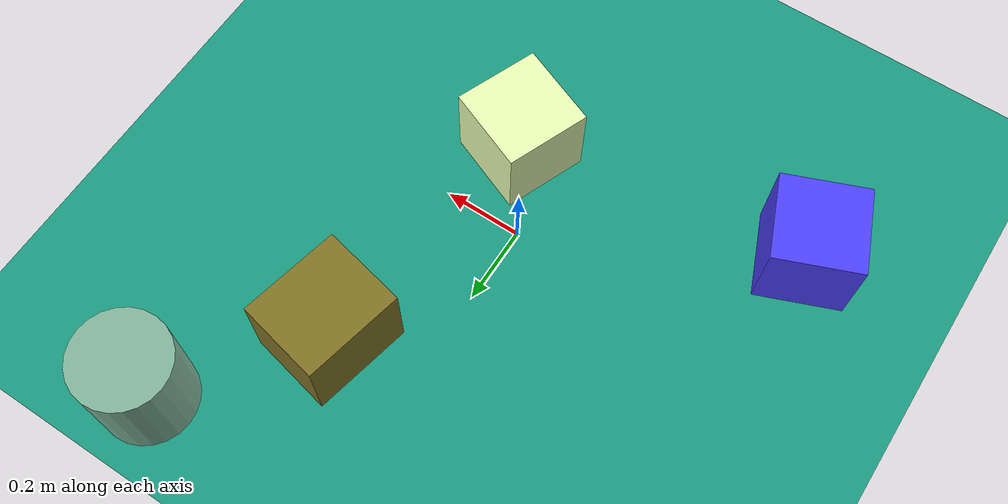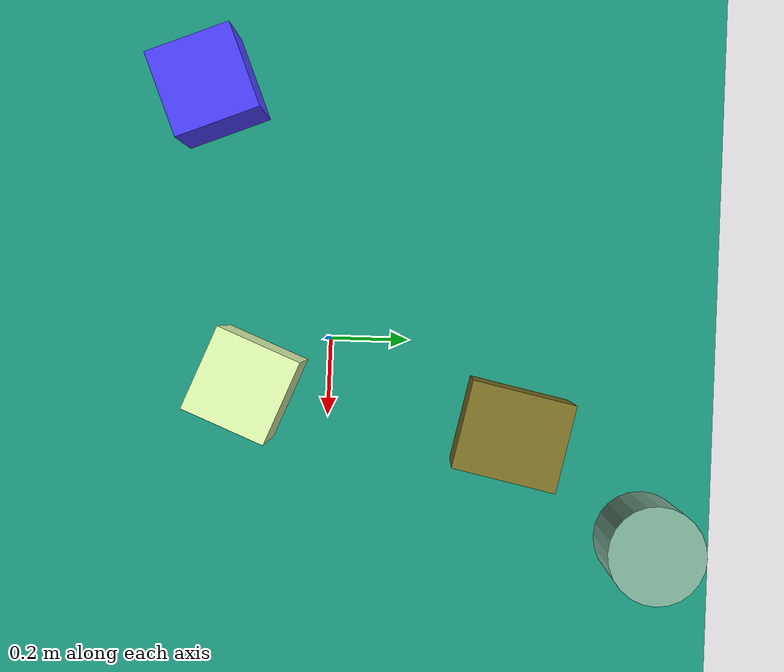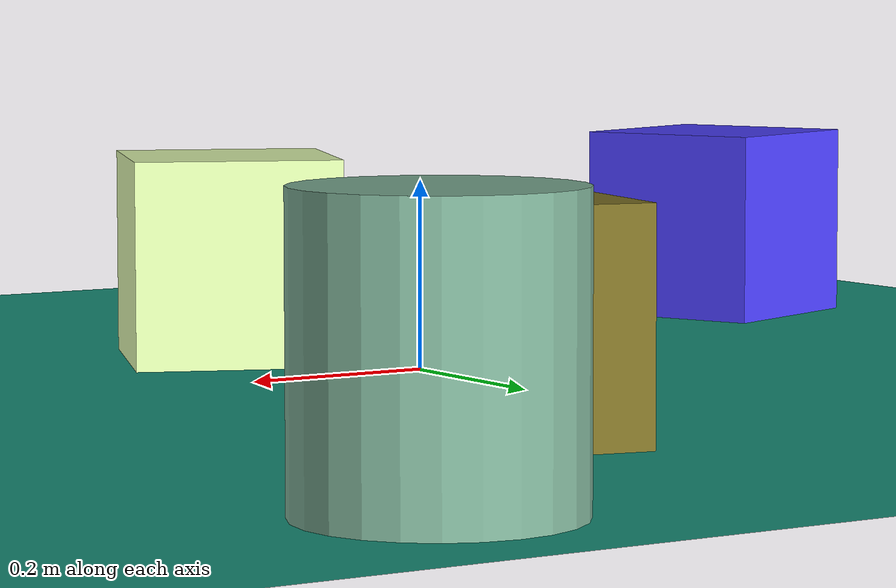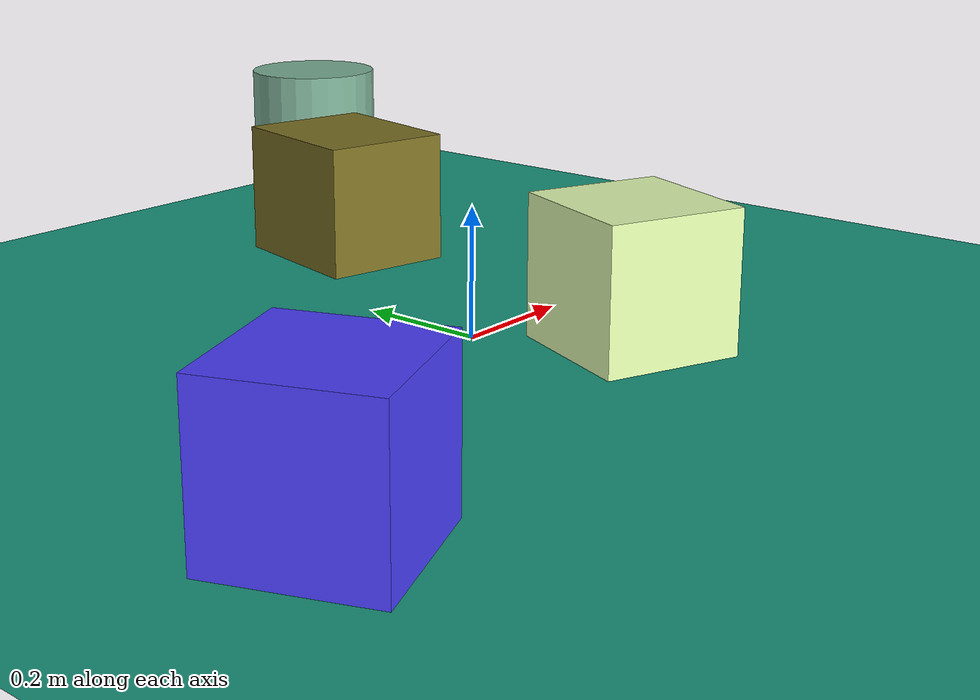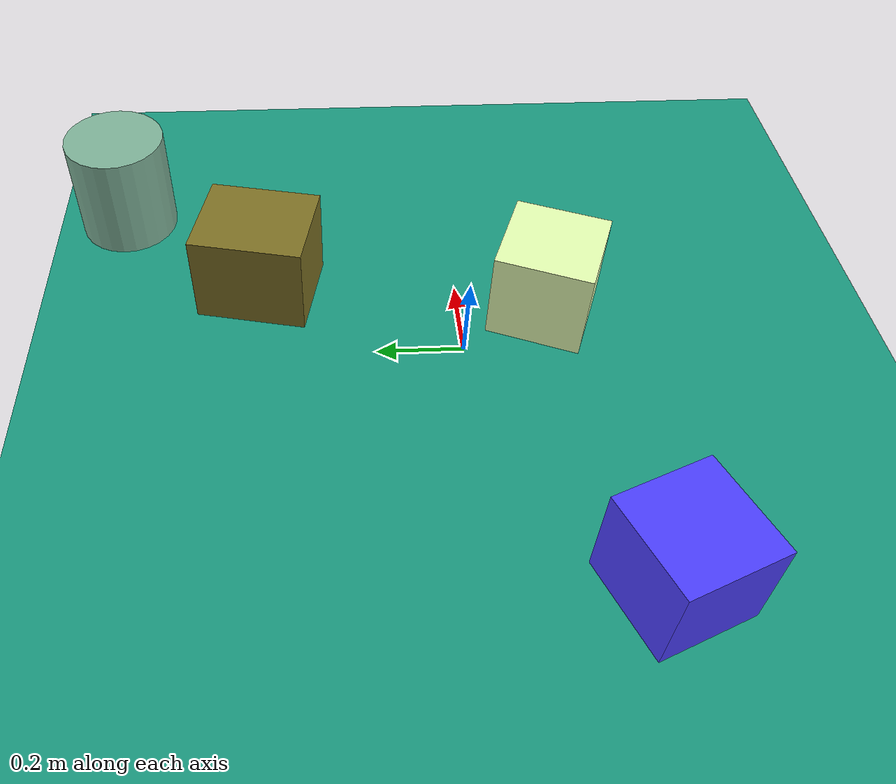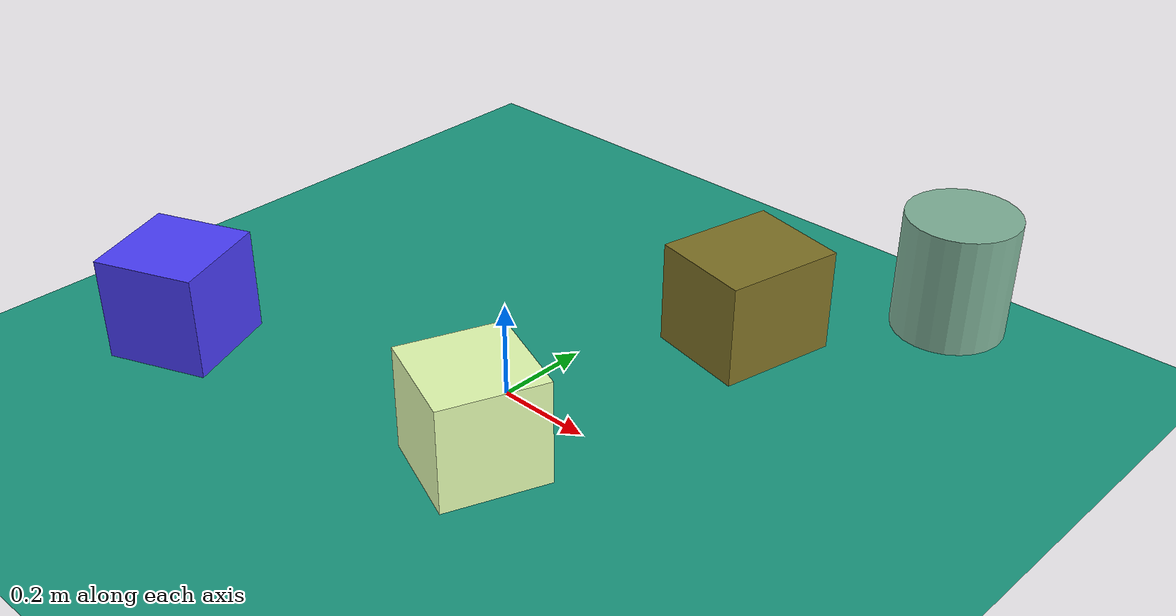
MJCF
<mujoco>
   <asset>
<texture type="skybox" builtin="gradient" rgb1="0.8 0.8 0.1" rgb2="0.9 0.3 0.0" width="500" height="500"/>
<texture name="flat_0" builtin="flat" rgb1="0.9 1.0 0.7" rgb2="0.9 1.0 0.7"  width="500" height="500"/>
<texture name="gradient_1" builtin="gradient" rgb1="0.1 0.3 1.0" rgb2="0.5 0.2 1.0" width="500" height="500"/>
<texture name="checker_2" builtin="checker" rgb1="0.4 0.6 0.1" rgb2="0.6 0.3 0.2" width="500" height="500"/>
<texture name="flat_3" builtin="flat" rgb1="0.5 0.7 0.6" rgb2="0.5 0.7 0.6"  width="500" height="500"/><material name="flat_0_mat" reflectance="0.11927601243939245" texture="flat_0" texuniform="true"/>
<material name="gradient_1_mat" reflectance="0.5106860382092453" texture="gradient_1" texuniform="true"/>
<material name="checker_2_mat" reflectance="0.8696724070299591" texrepeat="3 3" texture="checker_2" texuniform="false" />
<material name="flat_3_mat" reflectance="0.033206646408596385" texture="flat_3" texuniform="true"/>
   </asset>

   <worldbody>
     <geom type="plane" size="1 1 0.1" rgba="0.1 0.6 0.5 1" />
<light pos="-0.5181967702371681 -0.7902642082553859 2" dir="0 0 -1" cutoff="90" diffuse="1 1 1" specular="1 1 1"/>
<geom type="box" pos="0.12 -0.2 0.11" size="0.11 0.11 0.11" material="flat_0_mat" euler="0 0 68" />
<geom type="box" pos="-0.62 -0.32 0.11" size="0.11 0.11 0.11" material="gradient_1_mat" euler="0 0 22" />
<geom type="box" pos="0.22 0.47 0.11" size="0.13 0.11 0.11" material="checker_2_mat" euler="0 0 78" />
<geom type="cylinder" pos="0.49 0.82 0.13" size="0.12 0.13 0.13" material="flat_3_mat" euler="0 0 14" /><camera euler="60 0 180" fovy="60" name="camera1" pos="-0.2 -1.5 1"></camera>   </worldbody>
   <visual>
      <headlight diffuse="0.7 0.7 0.7"/>
   </visual>
</mujoco>
